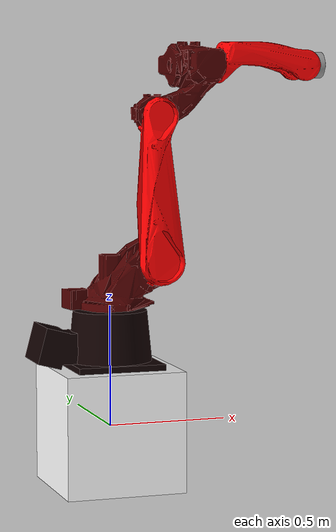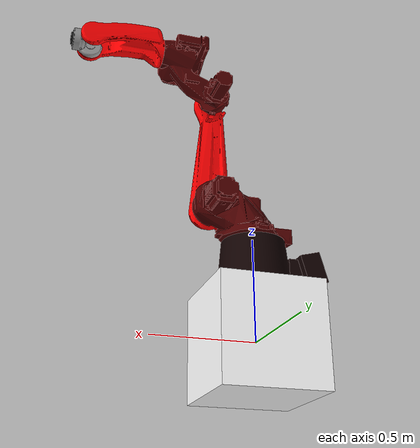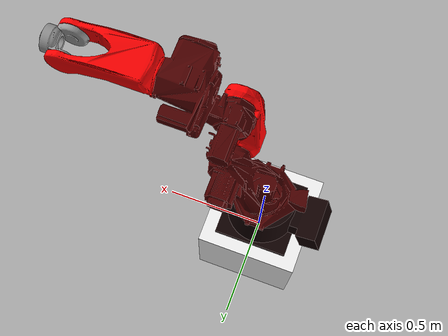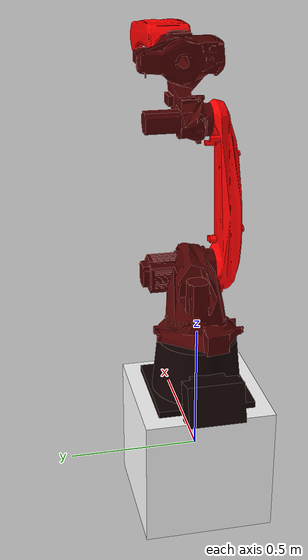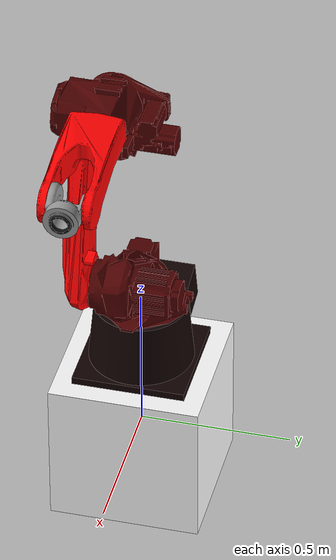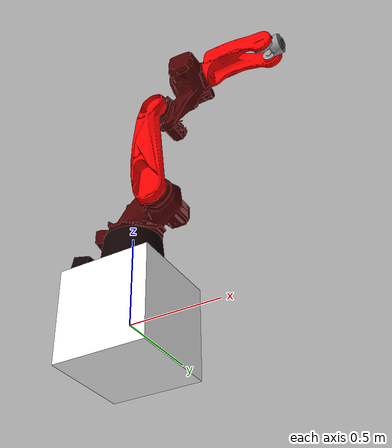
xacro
<?xml version="1.0"?>
<!-- Source: https://github.com/arsh09/ros_tutorials -->
<robot name="welding_arm" xmlns:xacro="http://ros.org/wiki/xacro">

  <xacro:property name="package_name" value="mas_orchestra_digital_twin"/>
  <xacro:property name="PI" value="3.14159265"/>
  <xacro:arg name="ns" default="r1"/>
  <xacro:arg name="controllers_yaml" default=""/>

  <link name="$(arg ns)/world"/>

  <joint name="$(arg ns)/joint_platform" type="fixed">
    <parent link="$(arg ns)/world"/>
    <child link="$(arg ns)/platform" />
  </joint>

  <link name="$(arg ns)/platform">
    <inertial>
      <origin xyz="0 0 0" rpy="0 0 0" />
      <mass value="100" />
      <inertia
        ixx="0"
        ixy="0"
        ixz="0"
        iyy="0"
        iyz="0"
        izz="0" />
    </inertial>
    <visual>
      <origin xyz="0 0 0" rpy="0 0 0" />
      <geometry>
        <box size="0.5 0.5 0.5"/>
      </geometry>
      <material name="">
        <color rgba="1 1 1 1" />
      </material>
    </visual>
    <collision>
      <origin xyz="0 0 0" rpy="0 0 0" />
      <geometry>
        <box size="0.5 0.5 0.5"/>
      </geometry>
    </collision>
  </link>

  <joint name="$(arg ns)/joint_base" type="fixed">
    <parent link="$(arg ns)/platform"/>
    <child link="$(arg ns)/base_link" />
    <origin xyz="0 0 0.25" rpy = "${PI/2} 0 0"/>
    <axis xyz="0 0 0"/>
  </joint>

  <link name="$(arg ns)/base_link">
    <inertial>
      <origin xyz="0 0 0" rpy="0 0 0" />
      <mass value="0.271689442075899" />
      <inertia
        ixx="0.000551467943673248"
        ixy="-3.54874087127204E-06"
        ixz="-1.62511816944923E-05"
        iyy="0.000400129321443915"
        iyz="-2.07321385851125E-06"
        izz="0.000582594592679587" />
    </inertial>
    <visual>
      <origin xyz="0 0 0" rpy="0 0 0" />
      <geometry>
        <mesh filename="package://${package_name}/meshes/welding_arm/visual/Base_baja_res.stl" scale="0.001 0.001 0.001"/>
      </geometry>
      <material name="">
        <color rgba="0.06 0.0 0.0 1" />
      </material>
    </visual>
    <collision>
      <origin xyz="0 0 0" rpy="0 0 0" />
      <geometry>
        <mesh filename="package://${package_name}/meshes/welding_arm/collision/Base_baja_res.stl" scale="0.001 0.001 0.001"/>
      </geometry>
    </collision>
  </link>

  <joint name="$(arg ns)/joint_NAUO2" type="revolute">
    <parent link="$(arg ns)/base_link"/>
    <child link="$(arg ns)/NAUO2_link" />
    <origin xyz="0 0.235 0" rpy = "${-PI/2} 0 0"/>
    <axis xyz="0 0 -1" />
    <limit lower="-2.96" upper="2.96" effort="30" velocity="6.54" />
  </joint>

  <link name="$(arg ns)/NAUO2_link">
    <inertial>
      <origin xyz="0 0 -0.235" rpy="0 0 0" />
      <mass value="0.271689442075899" />
      <inertia
        ixx="0.000551467943673248"
        ixy="-3.54874087127204E-06"
        ixz="-1.62511816944923E-05"
        iyy="0.000400129321443915"
        iyz="-2.07321385851125E-06"
        izz="0.000582594592679587" />
    </inertial>
    <visual>
      <origin xyz="0 0 -0.235" rpy="0 0 0" />
      <geometry>
        <mesh filename="package://${package_name}/meshes/welding_arm/visual/NAUO2_visual.stl" scale="0.001 0.001 0.001"/>
      </geometry>
      <material name="">
        <color rgba="0.3 0.0 0.0 1" />
      </material>
    </visual>
    <collision>
      <origin xyz="0 0 -0.235" rpy="0 0 0" />
      <geometry>
        <mesh filename="package://${package_name}/meshes/welding_arm/collision/NAUO2_collision.stl" scale="0.001 0.001 0.001"/>
      </geometry>
    </collision>
  </link>

  <joint name="$(arg ns)/joint_NAUO4" type="revolute">
    <parent link="$(arg ns)/NAUO2_link"/>
    <child link="$(arg ns)/NAUO4_link" />
    <origin xyz="0.185 -0.12 0.205" rpy = "0 0 0"/>
    <axis xyz="0 -1 0" />
    <limit lower="-1.13" upper="2.53" effort="30" velocity="6.54" />
  </joint>

  <link name="$(arg ns)/NAUO4_link">
    <inertial>
      <origin xyz="-0.185 0.12 -0.435" rpy="0 0 0" />
      <mass value="0.271689442075899" />
      <inertia
        ixx="0.000551467943673248"
        ixy="-3.54874087127204E-06"
        ixz="-1.62511816944923E-05"
        iyy="0.000400129321443915"
        iyz="-2.07321385851125E-06"
        izz="0.000582594592679587" />
    </inertial>
    <visual>
      <origin xyz="-0.185 0.12 -0.435" rpy="0 0 0" />
      <geometry>
        <mesh filename="package://${package_name}/meshes/welding_arm/visual/NAUO4_visual.stl" scale="0.001 0.001 0.001"/>
      </geometry>
      <material name="">
        <color rgba="1.0 0.0 0.0 1" />
      </material>
    </visual>
    <collision>
      <origin xyz="-0.185 0.12 -0.435" rpy="0 0 0" />
      <geometry>
        <mesh filename="package://${package_name}/meshes/welding_arm/collision/NAUO4_collision.stl" scale="0.001 0.001 0.001"/>
      </geometry>
    </collision>
  </link>

  <joint name="$(arg ns)/joint_NAUO3" type="revolute">
    <parent link="$(arg ns)/NAUO4_link"/>
    <child link="$(arg ns)/NAUO3_link" />
    <origin xyz="0 0.031 0.6" rpy = "0 0 0"/>
    <axis xyz="0 -1 0" />
    <limit lower="-1.22" upper="3.31" effort="30" velocity="6.54" />
  </joint>

  <link name="$(arg ns)/NAUO3_link">
    <inertial>
      <origin xyz="-0.185 0.089 -1.035" rpy="0 0 0" />
      <mass value="0.271689442075899" />
      <inertia
        ixx="0.000551467943673248"
        ixy="-3.54874087127204E-06"
        ixz="-1.62511816944923E-05"
        iyy="0.000400129321443915"
        iyz="-2.07321385851125E-06"
        izz="0.000582594592679587" />
    </inertial>
    <visual>
      <origin xyz="-0.185 0.089 -1.035" rpy="0 0 0" />
      <geometry>
        <mesh filename="package://${package_name}/meshes/welding_arm/visual/NAUO3_visual.stl" scale="0.001 0.001 0.001"/>
      </geometry>
      <material name="">
        <color rgba="0.3 0.0 0.0 1" />

      </material>
    </visual>
    <collision>
      <origin xyz="-0.185 0.089 -1.035" rpy="${PI/2} 0 0" />
      <geometry>
        <mesh filename="package://${package_name}/meshes/welding_arm/collision/NAUO3_collision.stl" scale="0.001 0.001 0.001"/>
      </geometry>
    </collision>
  </link>

  <joint name="$(arg ns)/joint_NAUO5" type="revolute">
    <parent link="$(arg ns)/NAUO3_link"/>
    <child link="$(arg ns)/NAUO5_link" />
    <origin xyz="0.29 0.09 0.2" rpy = "${PI/2} 0 0"/>
    <axis xyz="-1 0 0" />
    <limit lower="-3.31" upper="3.31" effort="17" velocity="9.59" />
  </joint>

  <link name="$(arg ns)/NAUO5_link">
    <inertial>
      <origin xyz="-0.475 -1.235 -0.001" rpy="0 0 0" />
      <mass value="0.271689442075899" />
      <inertia
        ixx="0.000551467943673248"
        ixy="-3.54874087127204E-06"
        ixz="-1.62511816944923E-05"
        iyy="0.000400129321443915"
        iyz="-2.07321385851125E-06"
        izz="0.000582594592679587" />
    </inertial>
    <visual>
      <origin xyz="-0.475 -1.235 -0.001" rpy="0 0 0" />
      <geometry>
        <mesh filename="package://${package_name}/meshes/welding_arm/visual/NAUO5_visual.stl" scale="0.001 0.001 0.001"/>
      </geometry>
      <material name="">
        <color rgba="1.0 0.0 0.0 1" />
      </material>
    </visual>
    <collision>
      <origin xyz="-0.475 -1.235 -0.001" rpy="0 0 0" />
      <geometry>
        <mesh filename="package://${package_name}/meshes/welding_arm/collision/NAUO5_collision.stl" scale="0.001 0.001 0.001"/>
      </geometry>
    </collision>
  </link>

  <joint name="$(arg ns)/joint_NAUO6" type="revolute">
    <parent link="$(arg ns)/NAUO5_link"/>
    <child link="$(arg ns)/NAUO6_link" />
    <origin xyz="0.36 0 0" rpy = "${-PI/2} 0 0"/>
    <axis xyz="0 -1 0" />
    <limit lower="-2.35" upper="2.35" effort="17" velocity="9.59" />
  </joint>

  <link name="$(arg ns)/NAUO6_link">
    <inertial>
      <origin xyz=" -0.835 -0.001 -1.235" rpy="0 0 0" />
      <mass value="0.271689442075899" />
      <inertia
        ixx="0.000551467943673248"
        ixy="-3.54874087127204E-06"
        ixz="-1.62511816944923E-05"
        iyy="0.000400129321443915"
        iyz="-2.07321385851125E-06"
        izz="0.000582594592679587" />
    </inertial>
    <visual>
      <origin xyz=" -0.835 -0.001 -1.235" rpy="0 0 0" />
      <geometry>
        <mesh filename="package://${package_name}/meshes/welding_arm/visual/NAUO6_visual.stl" scale="0.001 0.001 0.001"/>
      </geometry>
      <material name="">
        <color rgba="0.6 0.6 0.6 1" />
      </material>
    </visual>
    <collision>
      <origin xyz="-0.835 -0.001 -1.235" rpy="0 0 0" />
      <geometry>
        <mesh filename="package://${package_name}/meshes/welding_arm/collision/NAUO6_collision.stl" scale="0.001 0.001 0.001"/>
      </geometry>
    </collision>
  </link>

  <joint name="$(arg ns)/joint_NAUO7" type="revolute">
    <parent link="$(arg ns)/NAUO6_link"/>
    <child link="$(arg ns)/NAUO7_link" />
    <origin xyz="0.0937 0 0" rpy = "0 0 0"/>
    <axis xyz="-1 0 0" />
    <limit lower="-6.1" upper="6.1" effort="10" velocity="17.45" />
  </joint>

  <link name="$(arg ns)/NAUO7_link">
    <inertial>
      <origin xyz="-0.9287 -0.001 -1.235" rpy="0 0 0" />
      <mass value="0.271689442075899" />
      <inertia
        ixx="0.000551467943673248"
        ixy="-3.54874087127204E-06"
        ixz="-1.62511816944923E-05"
        iyy="0.000400129321443915"
        iyz="-2.07321385851125E-06"
        izz="0.000582594592679587" />
    </inertial>
    <visual>
      <origin xyz="-0.9287 -0.001 -1.235" rpy="0 0 0" />
      <geometry>
        <mesh filename="package://${package_name}/meshes/welding_arm/visual/NAUO7_visual.stl" scale="0.001 0.001 0.001"/>

      </geometry>
      <material name="">
        <color rgba="0.05 0.05 0.05 1" />

      </material>
    </visual>
    <collision>
      <origin xyz="-0.9287 -0.001 -1.235" rpy="0 0 0" />
      <geometry>
        <mesh filename="package://${package_name}/meshes/welding_arm/collision/NAUO7_collision.stl" scale="0.001 0.001 0.001"/>

      </geometry>
    </collision>
  </link>

  <ros2_control name="IgnitionSystem" type="system">
    <hardware>
      <plugin>gz_ros2_control/GazeboSimSystem</plugin>
    </hardware>
    <joint name="$(arg ns)/joint_NAUO2">
      <command_interface name="position"/>
      <state_interface name="position"/>
      <state_interface name="velocity"/>
    </joint>
    <joint name="$(arg ns)/joint_NAUO4">
      <command_interface name="position"/>
      <state_interface name="position"/>
      <state_interface name="velocity"/>
    </joint>
    <joint name="$(arg ns)/joint_NAUO3">
      <command_interface name="position"/>
      <state_interface name="position"/>
      <state_interface name="velocity"/>
    </joint>
    <joint name="$(arg ns)/joint_NAUO5">
      <command_interface name="position"/>
      <state_interface name="position"/>
      <state_interface name="velocity"/>
    </joint>
    <joint name="$(arg ns)/joint_NAUO6">
      <command_interface name="position"/>
      <state_interface name="position"/>
      <state_interface name="velocity"/>
    </joint>
    <joint name="$(arg ns)/joint_NAUO7">
      <command_interface name="position"/>
      <state_interface name="position"/>
      <state_interface name="velocity"/>
    </joint>
  </ros2_control>

  <gazebo>
    <plugin filename="libgz_ros2_control-system.so"
            name="gz_ros2_control::GazeboSimROS2ControlPlugin">
      <parameters>$(arg controllers_yaml)</parameters>
      <robot_param>robot_description</robot_param>
      <robot_param_node>robot_state_publisher</robot_param_node>
      <controller_manager_prefix_node_name>$(arg ns)</controller_manager_prefix_node_name>
      <ros>
        <namespace>$(arg ns)</namespace>
        </ros>
    </plugin>

    <plugin
      filename="gz-sim-joint-state-publisher-system"
      name="gz::sim::systems::JointStatePublisher">
    </plugin>

  </gazebo>

</robot>
